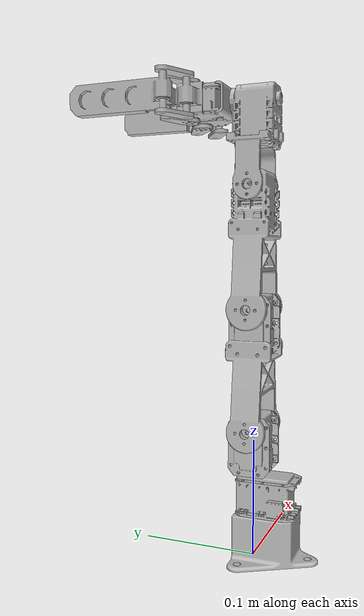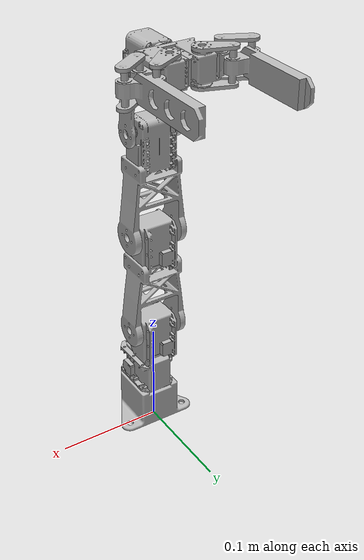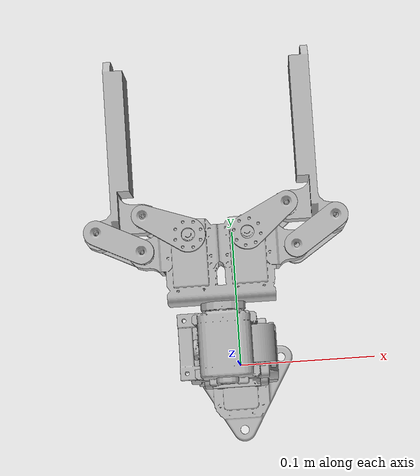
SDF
<?xml version='1.0' ?>
<sdf version='1.5'>
<model name='rexarm_gripper'>
	<include>
		<uri>model://rexarm</uri>
	</include>

	<include>
		<uri>model://gripper</uri>
		<pose>0 0.04 0.38 1.5708 0 1.5708</pose>
	</include>

	<!-- Attach gripper to the arm -->
	<joint type='fixed' name='attach_joint'>
		<pose>0 -0.031 0 0 0 0</pose>
		<parent>rexarm::wrist</parent>
		<child>gripper::gp_wrist</child>
	</joint>
</model>
</sdf>

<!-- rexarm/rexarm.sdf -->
<sdf version='1.5'>
<model name='rexarm'>
    <link name='base'>
        <pose>0 0 0.0542 0 0 0</pose>
        <inertial>
            <mass>0.075</mass>
            <inertia>
                <ixx>2.2649e-05</ixx>
                <ixy>3.6778e-08</ixy>
                <ixz>-2.1305e-07</ixz>
                <iyy>1.2868e-05</iyy>
                <iyz>-1.1145e-06</iyz>
                <izz>1.77331e-05</izz>
            </inertia>
        </inertial>
        <collision name='collision'>
            <geometry>
                <mesh><uri>model://rexarm/meshes/base.dae</uri></mesh>
            </geometry>
        </collision>
        <visual name='visual'>
            <geometry>
                <mesh><uri>model://rexarm/meshes/base.dae</uri></mesh>
            </geometry>
        </visual>
		<gravity>0</gravity>
    </link>
    <link name='shoulder1'>
        <pose>0 0 0.1112 1.5708 0 1.5708</pose>
        <inertial>
            <mass>0.075</mass>
            <inertia>
                <ixx>2.2649e-05</ixx>
                <ixy>3.6778e-08</ixy>
                <ixz>-2.1305e-07</ixz>
                <iyy>1.2868e-05</iyy>
                <iyz>-1.1145e-06</iyz>
                <izz>1.77331e-05</izz>
            </inertia>
        </inertial>
        <collision name='collision'>
            <geometry>
                <mesh><uri>model://rexarm/meshes/shoulder1.dae</uri></mesh>
            </geometry>
        </collision>
        <visual name='visual'>
            <geometry>
                <mesh><uri>model://rexarm/meshes/shoulder1.dae</uri></mesh>
            </geometry>
        </visual>
		<gravity>0</gravity>
    </link>
    <link name='shoulder2'>
        <pose>0 0 0.2117 1.5708 0 1.5708</pose>
        <inertial>
            <mass>0.075</mass>
            <inertia>
                <ixx>2.2649e-05</ixx>
                <ixy>3.6778e-08</ixy>
                <ixz>-2.1305e-07</ixz>
                <iyy>1.2868e-05</iyy>
                <iyz>-1.1145e-06</iyz>
                <izz>1.77331e-05</izz>
            </inertia>
        </inertial>
        <collision name='collision'>
            <geometry>
                <mesh><uri>model://rexarm/meshes/shoulder2.dae</uri></mesh>
            </geometry>
        </collision>
        <visual name='visual'>
            <geometry>
                <mesh><uri>model://rexarm/meshes/shoulder2.dae</uri></mesh>
            </geometry>
        </visual>
		<gravity>0</gravity>
    </link>
    <link name='elbow'>
        <pose>0 0 0.3117 1.5708 0 1.5708</pose>
        <inertial>
            <mass>0.075</mass>
            <inertia>
                <ixx>2.2649e-05</ixx>
                <ixy>3.6778e-08</ixy>
                <ixz>-2.1305e-07</ixz>
                <iyy>1.2868e-05</iyy>
                <iyz>-1.1145e-06</iyz>
                <izz>1.77331e-05</izz>
            </inertia>
        </inertial>
        <collision name='collision'>
            <geometry>
                <mesh><uri>model://rexarm/meshes/elbow.dae</uri></mesh>
            </geometry>
        </collision>
        <visual name='visual'>
            <geometry>
                <mesh><uri>model://rexarm/meshes/elbow.dae</uri></mesh>
            </geometry>
        </visual>
		<gravity>0</gravity>
    </link>
    <link name='wrist'>
        <pose>0 0 0.3117 1.5708 0 1.5708</pose>
        <inertial>
            <mass>10e-10</mass>
            <inertia>
                <ixx>1</ixx>
                <ixy>0</ixy>
                <ixz>0</ixz>
                <iyy>1</iyy>
                <iyz>0</iyz>
                <izz>1</izz>
            </inertia>
        </inertial>
        <collision name='collision'>
            <geometry>
                <mesh><uri>model://rexarm/meshes/wrist.dae</uri></mesh>
            </geometry>
        </collision>
        <visual name='visual'>
            <geometry>
                <mesh><uri>model://rexarm/meshes/wrist.dae</uri></mesh>
            </geometry>
        </visual>
		<gravity>0</gravity>
    </link>
    <joint type='revolute' name='base_joint'>
        <pose>0 -0.039 0 0 0 0</pose>
        <parent>base</parent>
        <child>shoulder1</child>
        <axis>
            <xyz>0 1 0</xyz>
            <limit>
                <lower>-3.14</lower>
                <upper>3.14</upper>
                <effort>0.5</effort>
                <velocity>5.76</velocity>
            </limit>
        </axis>
        <physics>
            <ode>
                <max_force>0.5</max_force>
            </ode>
        </physics>
    </joint>
    <joint type='revolute' name='shoulder_joint'>
        <pose>0 -0.1005 0 0 0 0</pose>
        <parent>shoulder1</parent>
        <child>shoulder2</child>
        <axis>
            <xyz>0 0 1</xyz>
            <limit>
                <lower>-3.14</lower>
                <upper>3.14</upper>
                <effort>0.5</effort>
                <velocity>5.76</velocity>
            </limit>
        </axis>
        <physics>
            <ode>
                <max_force>0.5</max_force>
            </ode>
        </physics>
    </joint>
    <joint type='revolute' name='elbow_joint'>
        <pose>0 -0.1 0 0 0 0</pose>
        <parent>shoulder2</parent>
        <child>elbow</child>
        <axis>
            <xyz>0 0 1</xyz>
            <limit>
                <lower>-3.14</lower>
                <upper>3.14</upper>
                <effort>0.3</effort>
                <velocity>5.76</velocity>
            </limit>
        </axis>
        <physics>
            <ode>
                <max_force>0.3</max_force>
            </ode>
        </physics>
    </joint>
    <joint type='revolute' name='wrist_joint'>
        <pose>0 0 0 0 0 0</pose>
        <parent>elbow</parent>
        <child>wrist</child>
        <axis>
            <xyz>0 0 1</xyz>
            <limit>
                <lower>-3.14</lower>
                <upper>3.14</upper>
                <velocity>0.0298</velocity>
            </limit>
        </axis>
        <physics>
            <ode>
                <max_force>0.3</max_force>
            </ode>
        </physics>
    </joint>
</model>
</sdf>

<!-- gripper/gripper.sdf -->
<sdf version='1.5'>
<model name='gripper'>
		<link name='gp_base'>
        <pose>0 0 0 0 0 0</pose>
        <inertial>
           <mass>0.01</mass>
            <inertia>
                <ixx>1.8869e-06</ixx>
                <ixy>-4.7651e-09</ixy>
                <ixz>2.5e-13</ixz>
                <iyy>2.1174e-06</iyy>
                <iyz>1.4168e-09</iyz>
                <izz>7.1428e-07</izz>
            </inertia>
        </inertial>
        <collision name='collision'>
            <geometry>
                <mesh><uri>model://gripper/meshes/gp_base.dae</uri></mesh>
            </geometry>
        </collision>
        <visual name='visual'>
            <geometry>
                <mesh><uri>model://gripper/meshes/gp_base.dae</uri></mesh>
            </geometry>
        </visual>
				<gravity>0</gravity>
		</link>
		<link name='gp_link_inner1'>
        <pose>0.017 0 -0.023 0 2.09439 0</pose>
        <inertial>
            <mass>0.01</mass>
            <inertia>
                <ixx>8.172282e-7</ixx>
                <ixy>0</ixy>
                <ixz>-9.63323e-8</ixz>
                <iyy>2.967633e-7</iyy>
                <iyz>0</iyz>
                <izz>7.395451e-7</izz>
            </inertia>
        </inertial>
        <collision name='collision'>
            <geometry>
                <mesh><uri>model://gripper/meshes/gp_link_inner.dae</uri></mesh>
            </geometry>
        </collision>
        <visual name='visual'>
            <geometry>
                <mesh><uri>model://gripper/meshes/gp_link_inner.dae</uri></mesh>
            </geometry>
        </visual>
				<gravity>0</gravity>
		</link>
		<link name='gp_link_outter1'>
        <pose>0.0107 0 -0.048 0 2.09439 0</pose>
        <inertial>
            <mass>0.01</mass>
            <inertia>
                <ixx>8.172282e-7</ixx>
                <ixy>0</ixy>
                <ixz>-9.63323e-8</ixz>
                <iyy>2.967633e-7</iyy>
                <iyz>0</iyz>
                <izz>7.395451e-7</izz>
						</inertia>
        </inertial>
        <collision name='collision'>
            <geometry>
                <mesh><uri>model://gripper/meshes/gp_link_outter.dae</uri></mesh>
            </geometry>
        </collision>
        <visual name='visual'>
            <geometry>
                <mesh><uri>model://gripper/meshes/gp_link_outter.dae</uri></mesh>
            </geometry>
        </visual>
				<gravity>0</gravity>
		</link>
		<link name='gp_finger1'>
        <pose>0.0554 0 -0.0473 0 0 0</pose>
        <inertial>
            <mass>0.005</mass>
            <inertia>
                <ixx>1.5229525e-7</ixx>
                <ixy>1.21593e-9</ixy>
                <ixz>-3.432709e-8</ixz>
                <iyy>1.40180695e-6</iyy>
                <iyz>1.854e-11</iyz>
                <izz>1.42294662e-6</izz>
            </inertia>
        </inertial>
        <collision name='collision'>
            <geometry>
                <mesh><uri>model://gripper/meshes/gp_finger.dae</uri></mesh>
            </geometry>
        </collision>
        <visual name='visual'>
            <geometry>
                <mesh><uri>model://gripper/meshes/gp_finger.dae</uri></mesh>
            </geometry>
        </visual>
				<self_collide>1</self_collide>
				<gravity>0</gravity>
		</link>
		<link name='gp_link_inner2'>
        <pose>0.017 0 0.023 0 0 0</pose>
        <inertial>
            <mass>0.01</mass>
            <inertia>
                <ixx>8.172282e-7</ixx>
                <ixy>0</ixy>
                <ixz>-9.63323e-8</ixz>
                <iyy>2.967633e-7</iyy>
                <iyz>0</iyz>
                <izz>7.395451e-7</izz>
						</inertia>
        </inertial>
        <collision name='collision'>
            <geometry>
                <mesh><uri>model://gripper/meshes/gp_link_inner.dae</uri></mesh>
            </geometry>
        </collision>
        <visual name='visual'>
            <geometry>
                <mesh><uri>model://gripper/meshes/gp_link_inner.dae</uri></mesh>
            </geometry>
        </visual>
				<gravity>0</gravity>
		</link>
		<link name='gp_link_outter2'>
        <pose>0.0107 0 0.048 0 0 0</pose>
        <inertial>
             <mass>0.01</mass>
            <inertia>
                <ixx>8.172282e-7</ixx>
                <ixy>0</ixy>
                <ixz>-9.63323e-8</ixz>
                <iyy>2.967633e-7</iyy>
                <iyz>0</iyz>
                <izz>7.395451e-7</izz>
						</inertia>
        </inertial>
        <collision name='collision'>
            <geometry>
                <mesh><uri>model://gripper/meshes/gp_link_outter.dae</uri></mesh>
            </geometry>
        </collision>
        <visual name='visual'>
            <geometry>
                <mesh><uri>model://gripper/meshes/gp_link_outter.dae</uri></mesh>
            </geometry>
        </visual>
				<gravity>0</gravity>
		</link>
		<link name='gp_finger2'>
        <pose>0.0575 0 0.046 3.1415 0 0</pose>
        <inertial>
            <mass>0.005</mass>
            <inertia>
                <ixx>1.5229525e-7</ixx>
                <ixy>1.21593e-9</ixy>
                <ixz>-3.432709e-8</ixz>
                <iyy>1.40180695e-6</iyy>
                <iyz>1.854e-11</iyz>
                <izz>1.42294662e-6</izz>
            </inertia>
        </inertial>
        <collision name='collision'>
            <geometry>
                <mesh><uri>model://gripper/meshes/gp_finger.dae</uri></mesh>
            </geometry>
        </collision>
        <visual name='visual'>
            <geometry>
                <mesh><uri>model://gripper/meshes/gp_finger.dae</uri></mesh>
            </geometry>
        </visual>
				<self_collide>1</self_collide>
				<gravity>0</gravity>
		</link>
		<link name='gp_wrist'>
        <pose>-4.15e-2 0 0 0 1.5708 0</pose>
        <inertial>
            <mass>0.075</mass>
            <inertia>
                <ixx>2.2649e-05</ixx>
                <ixy>3.6778e-08</ixy>
                <ixz>-2.1305e-07</ixz>
                <iyy>1.2868e-05</iyy>
                <iyz>-1.1145e-06</iyz>
                <izz>1.77331e-05</izz>
            </inertia>
        </inertial>
        <collision name='collision'>
            <geometry>
                <mesh><uri>model://gripper/meshes/AX_12A.dae</uri></mesh>
            </geometry>
        </collision>
        <visual name='visual'>
            <geometry>
                <mesh><uri>model://gripper/meshes/AX_12A.dae</uri></mesh>
            </geometry>
        </visual>
				<gravity>0</gravity>
		</link>
		<joint type='revolute' name='joint1_1a'>
        <pose>-5.2e-3 0 -8.5e-3 0 0 0</pose>
        <parent>gp_base</parent>
        <child>gp_link_inner1</child>
        <axis>
            <xyz>0 1 0</xyz>
            <limit>
                <lower>-0.4</lower>
                <upper>0</upper>
                <velocity>0.0298</velocity>
            </limit>
			<use_parent_model_frame>1</use_parent_model_frame>
        </axis>
        <physics>
            <ode>
                <max_force>0.3</max_force>
            </ode>
        </physics>
    	</joint>
		<joint type='fixed' name='joint1_1b'>
        <pose>-3.25e-2 0 1.15e-2 0 0 0</pose>
        <parent>gp_link_inner1</parent>
        <child>gp_finger1</child>
        <axis>
            <xyz>0 1 0</xyz>
            <limit>
                <lower>-3.14</lower>
                <upper>3.14</upper>
                <velocity>0.0298</velocity>
            </limit>
			<use_parent_model_frame>1</use_parent_model_frame>
        </axis>
        <physics>
            <ode>
                <max_force>0.3</max_force>
            </ode>
        </physics>
    </joint>
		<joint type='fixed' name='joint1_2b'>
        <pose>-3.95e-2 0 -1.172e-2 0 0 0</pose>
        <parent>gp_link_outter1</parent>
        <child>gp_finger1</child>
        <axis>
            <xyz>0 1 0</xyz>
            <limit>
                <lower>-3.14</lower>
                <upper>3.14</upper>
                <velocity>0.0298</velocity>
            </limit>
			<use_parent_model_frame>1</use_parent_model_frame>
        </axis>
        <physics>
            <ode>
                <max_force>0.3</max_force>
            </ode>
        </physics>
    </joint>
		<joint type='revolute' name='joint2_1a'>
        <pose>-5.2e-3 0 -8.5e-3 0 0 0</pose>
        <parent>gp_base</parent>
        <child>gp_link_inner2</child>
        <axis>
            <xyz>0 1 0</xyz>
            <limit>
                <lower>0</lower>
                <upper>0.4</upper>
                <velocity>0.0298</velocity>
            </limit>
				<use_parent_model_frame>1</use_parent_model_frame>
        </axis>
        <physics>
            <ode>
                <max_force>0.3</max_force>
            </ode>
        </physics>
    	</joint>
		<joint type='fixed' name='joint2_1b'>
        <pose>-3.25e-2 0 1.15e-2 3.1415 0 0</pose>
        <parent>gp_link_inner2</parent>
        <child>gp_finger2</child>
        <axis>
            <xyz>0 1 0</xyz>
            <limit>
                <lower>-3.14</lower>
                <upper>3.14</upper>
                <velocity>0.0298</velocity>
            </limit>
			<use_parent_model_frame>1</use_parent_model_frame>
        </axis>
        <physics>
            <ode>
                <max_force>0.3</max_force>
            </ode>
        </physics>
    </joint>
		<joint type='fixed' name='joint2_2b'>
        <pose>-4e-2 0 -1.178e-2 0 0 0</pose>
        <parent>gp_link_outter2</parent>
        <child>gp_finger2</child>
        <axis>
            <xyz>0 1 0</xyz>
            <limit>
                <lower>-3.14</lower>
                <upper>3.14</upper>
                <velocity>0.0298</velocity>
            </limit>
			<use_parent_model_frame>1</use_parent_model_frame>
        </axis>
        <physics>
            <ode>
                <max_force>0.3</max_force>
            </ode>
        </physics>
    </joint>
		<joint type='revolute' name='wrist_joint'>
        <pose>-2e-2 0 0 0 0 0</pose>
        <parent>gp_wrist</parent>
        <child>gp_base</child>
        <axis>
            <xyz>1 0 0</xyz>
            <limit>
                <lower>-3.14</lower>
                <upper>3.14</upper>
                <velocity>0.0298</velocity>
            </limit>
			<use_parent_model_frame>1</use_parent_model_frame>
        </axis>
        <physics>
            <ode>
                <max_force>0.3</max_force>
            </ode>
        </physics>
    </joint>
		<gripper name='four_bar_gp'>
				<grasp_check>
						<detach_steps>40</detach_steps>
						<attach_steps>20</attach_steps>
						<min_contact_count>2</min_contact_count>
				</grasp_check>

				<gripper_link>gripper::gp_finger1</gripper_link>
				<gripper_link>gripper::gp_finger2</gripper_link>

				<palm_link>gripper::gp_base</palm_link>
				<palm_link>gripper::gp_wrist</palm_link>
				<palm_link>gripper::gp_link_inner1</palm_link>
				<palm_link>gripper::gp_link_outter1</palm_link>
				<palm_link>gripper::gp_link_inner2</palm_link>
				<palm_link>gripper::gp_link_outter2</palm_link>
		</gripper>
</model>
</sdf>
